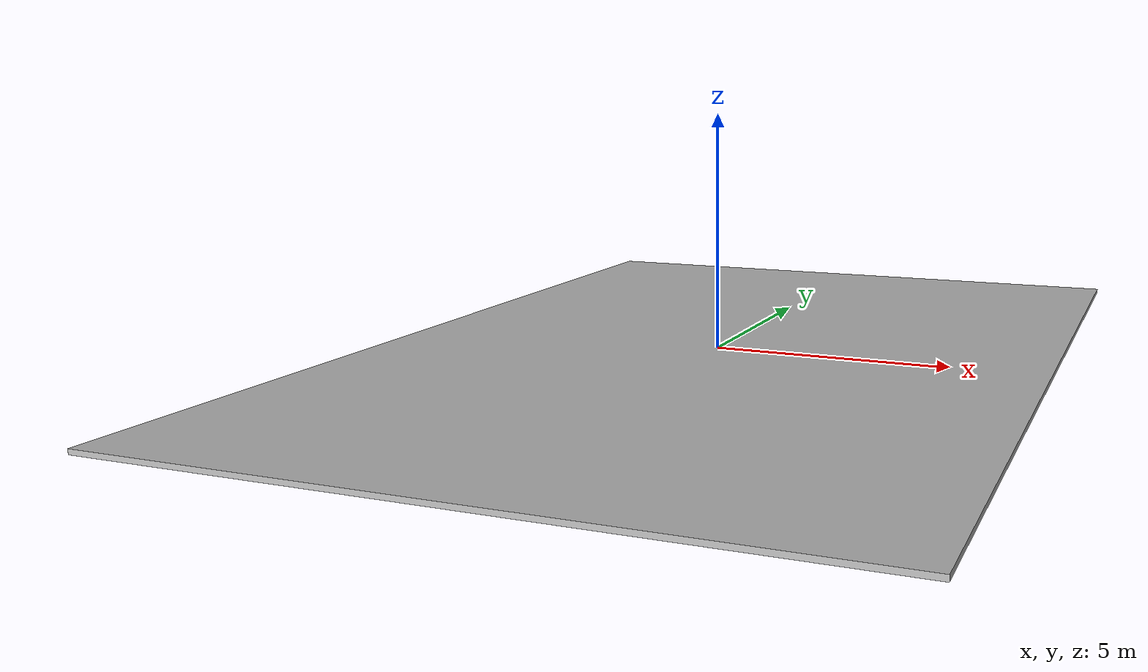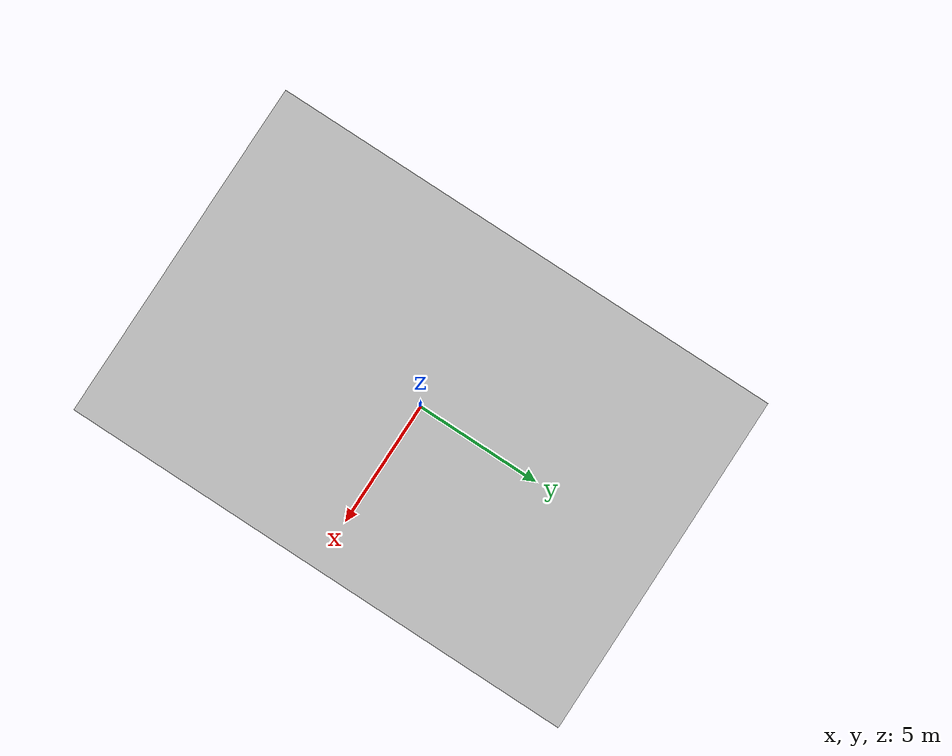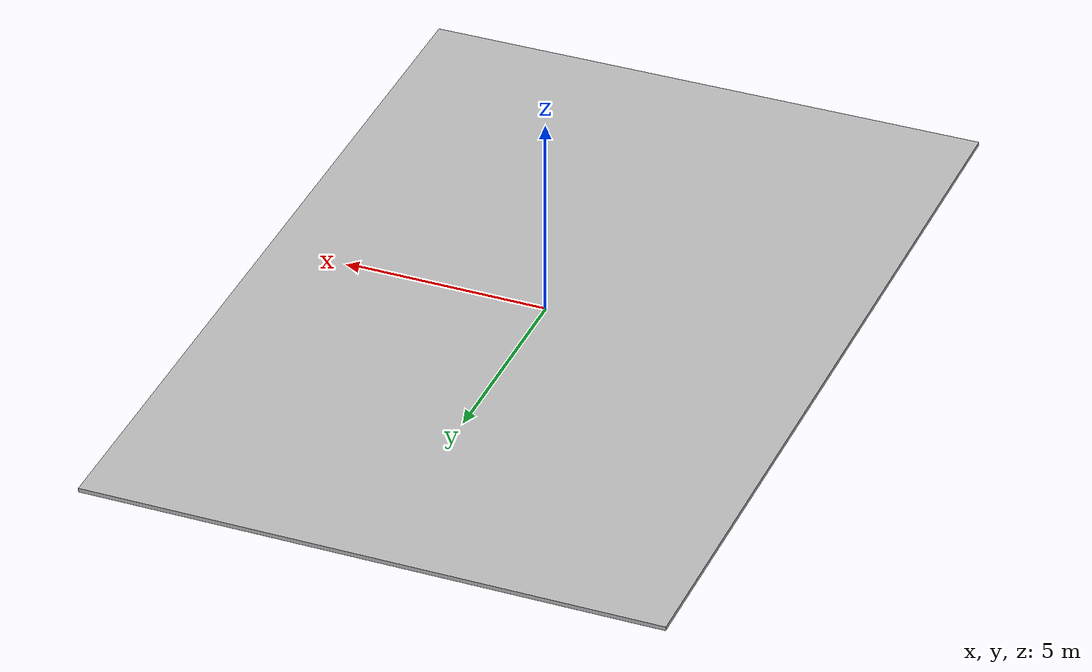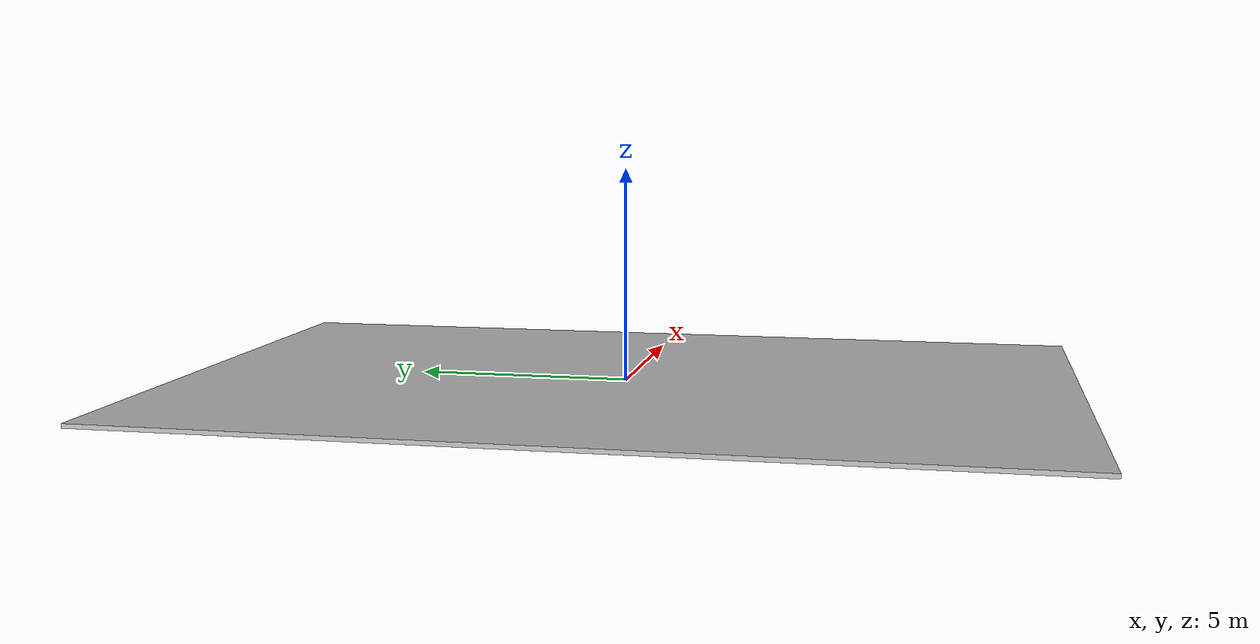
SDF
<?xml version="1.0"?>
<sdf version="1.7">
  <model name="warehouse_ground">
    <static>true</static>
    <pose>0 0 -0.05 0 0 0</pose>
    <link name="link">
      <inertial>
        <mass>30</mass>
        <inertia>
          <!-- Moments of inertia of a box -->
          <!-- ixx = 1/12 * m * (y^2 + z^2) -->
          <!-- ixy = 0 -->
          <!-- ixz = 0 -->
          <!-- iyy = 1/12 * m * (x^2 + z^2) -->
          <!-- iyz = 0 -->
          <!-- izz = 1/12 * m * (x^2 + y^2) -->
          <ixx>1000</ixx>
          <ixy>0</ixy>
          <ixz>0</ixz>
          <iyy>490</iyy>
          <iyz>0</iyz>
          <izz>1490</izz>
        </inertia>
      </inertial>
      <collision name="collision">
        <geometry>
          <box>
            <size>14 21 0.1</size>
          </box>
        </geometry>
      </collision>
      <visual name="visual">
        <geometry>
          <box>
            <size>14 21 0.1</size>
          </box>
        </geometry>
        <material>
          <script>
            <name>WarehouseGround</name>
            <uri>model://warehouse_ground/materials/scripts/warehouse_ground.material</uri>
          </script>
        </material>
      </visual>
    </link>
  </model>
</sdf>
